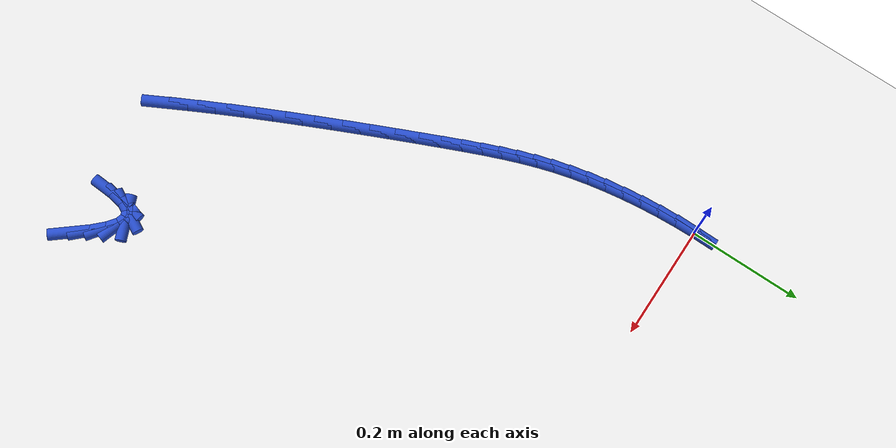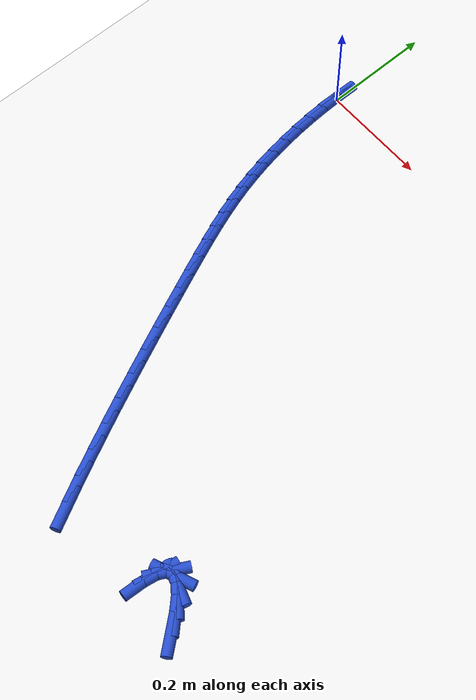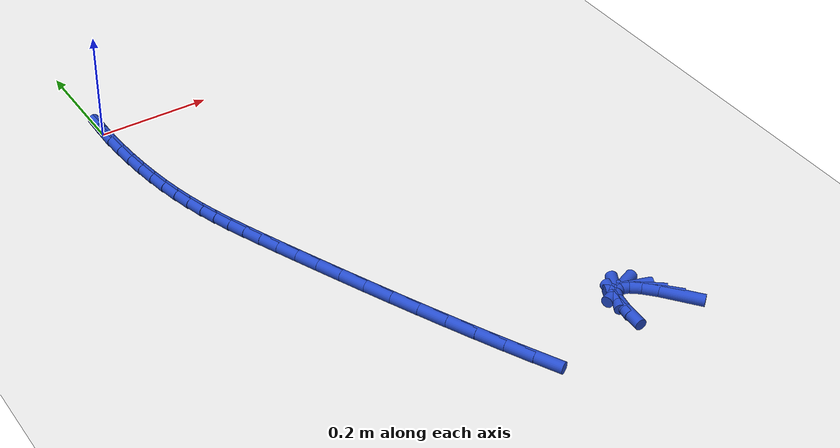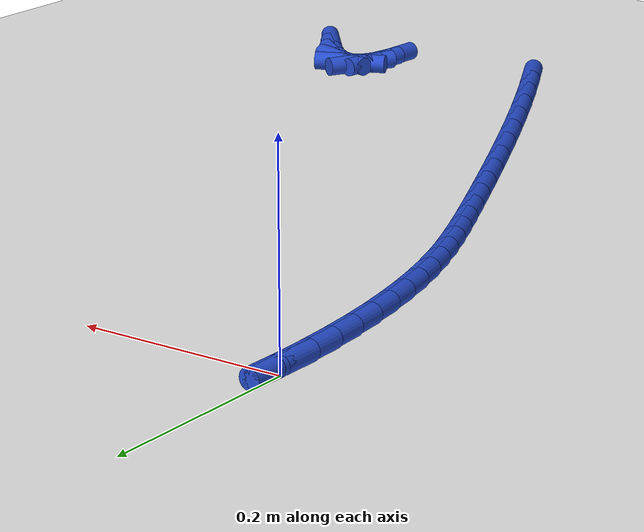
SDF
<sdf version="1.6">
 <world name="default">
  <model name="ground_plane">
   <static>1</static>
   <link name="link">
    <collision name="collision">
     <geometry><plane><normal>0 0 1</normal><size>100 100</size></plane></geometry>
     <surface><friction><ode><mu>100</mu><mu2>50</mu2></ode></friction></surface>
    </collision>
    <visual name="visual">
     <cast_shadows>0</cast_shadows>
     <geometry><plane><normal>0 0 1</normal><size>100 100</size></plane></geometry>
     <material>
      <script><uri>file://media/materials/scripts/gazebo.material</uri><name>Gazebo/WhiteGlow</name></script>
     </material>
    </visual>
   </link>
  </model>
  <model name="line">
   <link name="link_0">
    <pose>-8.239936510889834e-18 6.938893903907228e-17 0.01 0 1.57 1.5603650162208273</pose>
    <collision name="collision">
     <geometry><cylinder><radius>0.01</radius><length>0.08</length></cylinder></geometry>
    </collision>
    <visual name="visual">
     <material>
      <script><name>Gazebo/Blue</name><uri>file://media/materials/scripts/gazebo.material</uri></script>
     </material>
     <geometry><cylinder><radius>0.01</radius><length>0.08</length></cylinder></geometry>
    </visual>
   </link>
   <link name="link_222">
    <pose>0.5730797197307356 -0.8712738826055278 0.01 0 1.57 -0.8859184537051844</pose>
    <collision name="collision">
     <geometry><cylinder><radius>0.01</radius><length>0.08</length></cylinder></geometry>
    </collision>
    <visual name="visual">
     <material>
      <script><name>Gazebo/Blue</name><uri>file://media/materials/scripts/gazebo.material</uri></script>
     </material>
     <geometry><cylinder><radius>0.01</radius><length>0.08</length></cylinder></geometry>
    </visual>
   </link>
   <link name="link_223">
    <pose>0.5521842215464737 -0.8456905154851215 0.01 0 1.57 -0.8037975573046543</pose>
    <collision name="collision">
     <geometry><cylinder><radius>0.01</radius><length>0.08</length></cylinder></geometry>
    </collision>
    <visual name="visual">
     <material>
      <script><name>Gazebo/Blue</name><uri>file://media/materials/scripts/gazebo.material</uri></script>
     </material>
     <geometry><cylinder><radius>0.01</radius><length>0.08</length></cylinder></geometry>
    </visual>
   </link>
   <link name="link_224">
    <pose>0.533405429888121 -0.8262076531297452 0.01 0 1.57 -0.6493182765052797</pose>
    <collision name="collision">
     <geometry><cylinder><radius>0.01</radius><length>0.08</length></cylinder></geometry>
    </collision>
    <visual name="visual">
     <material>
      <script><name>Gazebo/Blue</name><uri>file://media/materials/scripts/gazebo.material</uri></script>
     </material>
     <geometry><cylinder><radius>0.01</radius><length>0.08</length></cylinder></geometry>
    </visual>
   </link>
   <link name="link_225">
    <pose>0.5170041809445436 -0.8137569851997206 0.01 0 1.57 -0.3151418924811235</pose>
    <collision name="collision">
     <geometry><cylinder><radius>0.01</radius><length>0.08</length></cylinder></geometry>
    </collision>
    <visual name="visual">
     <material>
      <script><name>Gazebo/Blue</name><uri>file://media/materials/scripts/gazebo.material</uri></script>
     </material>
     <geometry><cylinder><radius>0.01</radius><length>0.08</length></cylinder></geometry>
    </visual>
   </link>
   <link name="link_226">
    <pose>0.5032413109046057 -0.8092702013553672 0.01 0 1.57 0.38552154576611397</pose>
    <collision name="collision">
     <geometry><cylinder><radius>0.01</radius><length>0.08</length></cylinder></geometry>
    </collision>
    <visual name="visual">
     <material>
      <script><name>Gazebo/Blue</name><uri>file://media/materials/scripts/gazebo.material</uri></script>
     </material>
     <geometry><cylinder><radius>0.01</radius><length>0.08</length></cylinder></geometry>
    </visual>
   </link>
   <link name="link_227">
    <pose>0.49237765595717187 -0.8136789912570049 0.01 0 1.57 1.0747844646845572</pose>
    <collision name="collision">
     <geometry><cylinder><radius>0.01</radius><length>0.08</length></cylinder></geometry>
    </collision>
    <visual name="visual">
     <material>
      <script><name>Gazebo/Blue</name><uri>file://media/materials/scripts/gazebo.material</uri></script>
     </material>
     <geometry><cylinder><radius>0.01</radius><length>0.08</length></cylinder></geometry>
    </visual>
   </link>
   <link name="link_228">
    <pose>0.4846740423212583 -0.827915011545975 0.01 0 1.57 1.3871053424398916</pose>
    <collision name="collision">
     <geometry><cylinder><radius>0.01</radius><length>0.08</length></cylinder></geometry>
    </collision>
    <visual name="visual">
     <material>
      <script><name>Gazebo/Blue</name><uri>file://media/materials/scripts/gazebo.material</uri></script>
     </material>
     <geometry><cylinder><radius>0.01</radius><length>0.08</length></cylinder></geometry>
    </visual>
   </link>
   <link name="link_229">
    <pose>0.48016784501371906 -0.8521698745344444 0.01 0 1.57 1.5057596285667467</pose>
    <collision name="collision">
     <geometry><cylinder><radius>0.01</radius><length>0.08</length></cylinder></geometry>
    </collision>
    <visual name="visual">
     <material>
      <script><name>Gazebo/Blue</name><uri>file://media/materials/scripts/gazebo.material</uri></script>
     </material>
     <geometry><cylinder><radius>0.01</radius><length>0.08</length></cylinder></geometry>
    </visual>
   </link>
   <link name="link_246">
    <pose>0.3025696835915838 -0.8696012247292645 0.01 0 1.57 -1.095242448983995</pose>
    <collision name="collision">
     <geometry><cylinder><radius>0.01</radius><length>0.08</length></cylinder></geometry>
    </collision>
    <visual name="visual">
     <material>
      <script><name>Gazebo/Blue</name><uri>file://media/materials/scripts/gazebo.material</uri></script>
     </material>
     <geometry><cylinder><radius>0.01</radius><length>0.08</length></cylinder></geometry>
    </visual>
   </link>
   <link name="link_247">
    <pose>0.28099458499103747 -0.8277056067150876 0.01 0 1.57 -1.1085835561411386</pose>
    <collision name="collision">
     <geometry><cylinder><radius>0.01</radius><length>0.08</length></cylinder></geometry>
    </collision>
    <visual name="visual">
     <material>
      <script><name>Gazebo/Blue</name><uri>file://media/materials/scripts/gazebo.material</uri></script>
     </material>
     <geometry><cylinder><radius>0.01</radius><length>0.08</length></cylinder></geometry>
    </visual>
   </link>
   <link name="link_248">
    <pose>0.259233222852362 -0.7840263128417668 0.01 0 1.57 -1.1196225512225577</pose>
    <collision name="collision">
     <geometry><cylinder><radius>0.01</radius><length>0.08</length></cylinder></geometry>
    </collision>
    <visual name="visual">
     <material>
      <script><name>Gazebo/Blue</name><uri>file://media/materials/scripts/gazebo.material</uri></script>
     </material>
     <geometry><cylinder><radius>0.01</radius><length>0.08</length></cylinder></geometry>
    </visual>
   </link>
   <link name="link_249">
    <pose>0.23748244942599392 -0.7391334049906697 0.01 0 1.57 -1.1288987641069013</pose>
    <collision name="collision">
     <geometry><cylinder><radius>0.01</radius><length>0.08</length></cylinder></geometry>
    </collision>
    <visual name="visual">
     <material>
      <script><name>Gazebo/Blue</name><uri>file://media/materials/scripts/gazebo.material</uri></script>
     </material>
     <geometry><cylinder><radius>0.01</radius><length>0.08</length></cylinder></geometry>
    </visual>
   </link>
   <link name="link_250">
    <pose>0.2159391169623723 -0.6935969450431703 0.01 0 1.57 -1.1367938493982883</pose>
    <collision name="collision">
     <geometry><cylinder><radius>0.01</radius><length>0.08</length></cylinder></geometry>
    </collision>
    <visual name="visual">
     <material>
      <script><name>Gazebo/Blue</name><uri>file://media/materials/scripts/gazebo.material</uri></script>
     </material>
     <geometry><cylinder><radius>0.01</radius><length>0.08</length></cylinder></geometry>
    </visual>
   </link>
   <link name="link_251">
    <pose>0.19480007771193367 -0.6479869948806362 0.01 0 1.57 -1.1435845662927067</pose>
    <collision name="collision">
     <geometry><cylinder><radius>0.01</radius><length>0.08</length></cylinder></geometry>
    </collision>
    <visual name="visual">
     <material>
      <script><name>Gazebo/Blue</name><uri>file://media/materials/scripts/gazebo.material</uri></script>
     </material>
     <geometry><cylinder><radius>0.01</radius><length>0.08</length></cylinder></geometry>
    </visual>
   </link>
   <link name="link_252">
    <pose>0.17426218392511716 -0.6028736163844411 0.01 0 1.57 -1.14947536029127</pose>
    <collision name="collision">
     <geometry><cylinder><radius>0.01</radius><length>0.08</length></cylinder></geometry>
    </collision>
    <visual name="visual">
     <material>
      <script><name>Gazebo/Blue</name><uri>file://media/materials/scripts/gazebo.material</uri></script>
     </material>
     <geometry><cylinder><radius>0.01</radius><length>0.08</length></cylinder></geometry>
    </visual>
   </link>
   <link name="link_253">
    <pose>0.15452228785235927 -0.5588268714359532 0.01 0 1.57 -1.1546189468902825</pose>
    <collision name="collision">
     <geometry><cylinder><radius>0.01</radius><length>0.08</length></cylinder></geometry>
    </collision>
    <visual name="visual">
     <material>
      <script><name>Gazebo/Blue</name><uri>file://media/materials/scripts/gazebo.material</uri></script>
     </material>
     <geometry><cylinder><radius>0.01</radius><length>0.08</length></cylinder></geometry>
    </visual>
   </link>
   <link name="link_254">
    <pose>0.13577724174409897 -0.5164168219165458 0.01 0 1.57 -1.1591292916387101</pose>
    <collision name="collision">
     <geometry><cylinder><radius>0.01</radius><length>0.08</length></cylinder></geometry>
    </collision>
    <visual name="visual">
     <material>
      <script><name>Gazebo/Blue</name><uri>file://media/materials/scripts/gazebo.material</uri></script>
     </material>
     <geometry><cylinder><radius>0.01</radius><length>0.08</length></cylinder></geometry>
    </visual>
   </link>
   <link name="link_255">
    <pose>0.11822389785077296 -0.4762135297075872 0.01 0 1.57 -1.163106915279741</pose>
    <collision name="collision">
     <geometry><cylinder><radius>0.01</radius><length>0.08</length></cylinder></geometry>
    </collision>
    <visual name="visual">
     <material>
      <script><name>Gazebo/Blue</name><uri>file://media/materials/scripts/gazebo.material</uri></script>
     </material>
     <geometry><cylinder><radius>0.01</radius><length>0.08</length></cylinder></geometry>
    </visual>
   </link>
   <link name="link_256">
    <pose>0.10205810917222696 -0.43878292192767165 0.01 0 1.57 -1.1684030990909164</pose>
    <collision name="collision">
     <geometry><cylinder><radius>0.01</radius><length>0.08</length></cylinder></geometry>
    </collision>
    <visual name="visual">
     <material>
      <script><name>Gazebo/Blue</name><uri>file://media/materials/scripts/gazebo.material</uri></script>
     </material>
     <geometry><cylinder><radius>0.01</radius><length>0.08</length></cylinder></geometry>
    </visual>
   </link>
   <link name="link_257">
    <pose>0.0873808144010014 -0.4042981832264755 0.01 0 1.57 -1.1788127109956084</pose>
    <collision name="collision">
     <geometry><cylinder><radius>0.01</radius><length>0.08</length></cylinder></geometry>
    </collision>
    <visual name="visual">
     <material>
      <script><name>Gazebo/Blue</name><uri>file://media/materials/scripts/gazebo.material</uri></script>
     </material>
     <geometry><cylinder><radius>0.01</radius><length>0.08</length></cylinder></geometry>
    </visual>
   </link>
   <link name="link_258">
    <pose>0.07412116470721487 -0.3722216648967093 0.01 0 1.57 -1.1954642662322739</pose>
    <collision name="collision">
     <geometry><cylinder><radius>0.01</radius><length>0.08</length></cylinder></geometry>
    </collision>
    <visual name="visual">
     <material>
      <script><name>Gazebo/Blue</name><uri>file://media/materials/scripts/gazebo.material</uri></script>
     </material>
     <geometry><cylinder><radius>0.01</radius><length>0.08</length></cylinder></geometry>
    </visual>
   </link>
   <link name="link_259">
    <pose>0.06219021958947157 -0.34194085735984775 0.01 0 1.57 -1.2186834451433137</pose>
    <collision name="collision">
     <geometry><cylinder><radius>0.01</radius><length>0.08</length></cylinder></geometry>
    </collision>
    <visual name="visual">
     <material>
      <script><name>Gazebo/Blue</name><uri>file://media/materials/scripts/gazebo.material</uri></script>
     </material>
     <geometry><cylinder><radius>0.01</radius><length>0.08</length></cylinder></geometry>
    </visual>
   </link>
   <link name="link_260">
    <pose>0.051499038546374255 -0.31284325103736166 0.01 0 1.57 -1.2480559006385923</pose>
    <collision name="collision">
     <geometry><cylinder><radius>0.01</radius><length>0.08</length></cylinder></geometry>
    </collision>
    <visual name="visual">
     <material>
      <script><name>Gazebo/Blue</name><uri>file://media/materials/scripts/gazebo.material</uri></script>
     </material>
     <geometry><cylinder><radius>0.01</radius><length>0.08</length></cylinder></geometry>
    </visual>
   </link>
   <link name="link_261">
    <pose>0.04195868107652696 -0.2843163363507254 0.01 0 1.57 -1.2823012289955842</pose>
    <collision name="collision">
     <geometry><cylinder><radius>0.01</radius><length>0.08</length></cylinder></geometry>
    </collision>
    <visual name="visual">
     <material>
      <script><name>Gazebo/Blue</name><uri>file://media/materials/scripts/gazebo.material</uri></script>
     </material>
     <geometry><cylinder><radius>0.01</radius><length>0.08</length></cylinder></geometry>
    </visual>
   </link>
   <link name="link_262">
    <pose>0.03348020667853255 -0.2557476037214096 0.01 0 1.57 -1.3193929975653667</pose>
    <collision name="collision">
     <geometry><cylinder><radius>0.01</radius><length>0.08</length></cylinder></geometry>
    </collision>
    <visual name="visual">
     <material>
      <script><name>Gazebo/Blue</name><uri>file://media/materials/scripts/gazebo.material</uri></script>
     </material>
     <geometry><cylinder><radius>0.01</radius><length>0.08</length></cylinder></geometry>
    </visual>
   </link>
   <link name="link_263">
    <pose>0.02597472383034361 -0.22652488830286774 0.01 0 1.57 -1.3564881665468171</pose>
    <collision name="collision">
     <geometry><cylinder><radius>0.01</radius><length>0.08</length></cylinder></geometry>
    </collision>
    <visual name="visual">
     <material>
      <script><name>Gazebo/Blue</name><uri>file://media/materials/scripts/gazebo.material</uri></script>
     </material>
     <geometry><cylinder><radius>0.01</radius><length>0.08</length></cylinder></geometry>
    </visual>
   </link>
   <link name="link_264">
    <pose>0.019380664546977056 -0.1962283368504965 0.01 0 1.57 -1.3914225202040797</pose>
    <collision name="collision">
     <geometry><cylinder><radius>0.01</radius><length>0.08</length></cylinder></geometry>
    </collision>
    <visual name="visual">
     <material>
      <script><name>Gazebo/Blue</name><uri>file://media/materials/scripts/gazebo.material</uri></script>
     </material>
     <geometry><cylinder><radius>0.01</radius><length>0.08</length></cylinder></geometry>
    </visual>
   </link>
   <link name="link_265">
    <pose>0.013709188371295481 -0.16494997521324398 0.01 0 1.57 -1.4245539442171384</pose>
    <collision name="collision">
     <geometry><cylinder><radius>0.01</radius><length>0.08</length></cylinder></geometry>
    </collision>
    <visual name="visual">
     <material>
      <script><name>Gazebo/Blue</name><uri>file://media/materials/scripts/gazebo.material</uri></script>
     </material>
     <geometry><cylinder><radius>0.01</radius><length>0.08</length></cylinder></geometry>
    </visual>
   </link>
   <link name="link_266">
    <pose>0.008983422328779722 -0.13286606012671548 0.01 0 1.57 -1.4564528807604258</pose>
    <collision name="collision">
     <geometry><cylinder><radius>0.01</radius><length>0.08</length></cylinder></geometry>
    </collision>
    <visual name="visual">
     <material>
      <script><name>Gazebo/Blue</name><uri>file://media/materials/scripts/gazebo.material</uri></script>
     </material>
     <geometry><cylinder><radius>0.01</radius><length>0.08</length></cylinder></geometry>
    </visual>
   </link>
   <link name="link_267">
    <pose>0.005226493444911224 -0.10015284832652022 0.01 0 1.57 -1.4876218465306534</pose>
    <collision name="collision">
     <geometry><cylinder><radius>0.01</radius><length>0.08</length></cylinder></geometry>
    </collision>
    <visual name="visual">
     <material>
      <script><name>Gazebo/Blue</name><uri>file://media/materials/scripts/gazebo.material</uri></script>
     </material>
     <geometry><cylinder><radius>0.01</radius><length>0.08</length></cylinder></geometry>
    </visual>
   </link>
   <link name="link_268">
    <pose>0.0024615287451709936 -0.06698659654826455 0.01 0 1.57 -1.5185199956593292</pose>
    <collision name="collision">
     <geometry><cylinder><radius>0.01</radius><length>0.08</length></cylinder></geometry>
    </collision>
    <visual name="visual">
     <material>
      <script><name>Gazebo/Blue</name><uri>file://media/materials/scripts/gazebo.material</uri></script>
     </material>
     <geometry><cylinder><radius>0.01</radius><length>0.08</length></cylinder></geometry>
    </visual>
   </link>
   <link name="link_269">
    <pose>0.0007116552550401594 -0.03354356152755471 0.01 0 1.57 -1.5495836565681094</pose>
    <collision name="collision">
     <geometry><cylinder><radius>0.01</radius><length>0.08</length></cylinder></geometry>
    </collision>
    <visual name="visual">
     <material>
      <script><name>Gazebo/Blue</name><uri>file://media/materials/scripts/gazebo.material</uri></script>
     </material>
     <geometry><cylinder><radius>0.01</radius><length>0.08</length></cylinder></geometry>
    </visual>
   </link>
   <link name="link_270">
    <pose>-6.5052130349130266e-18 6.938893903907228e-17 0.01 0 1.57 1.5603481660583993</pose>
    <collision name="collision">
     <geometry><cylinder><radius>0.01</radius><length>0.08</length></cylinder></geometry>
    </collision>
    <visual name="visual">
     <material>
      <script><name>Gazebo/Blue</name><uri>file://media/materials/scripts/gazebo.material</uri></script>
     </material>
     <geometry><cylinder><radius>0.01</radius><length>0.08</length></cylinder></geometry>
    </visual>
   </link>
  </model>
 </world>
</sdf>
